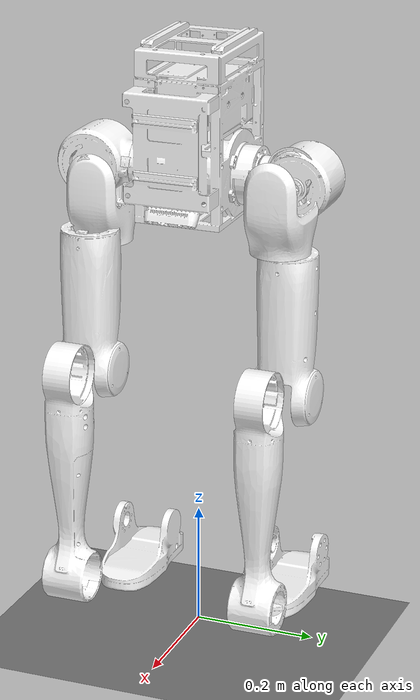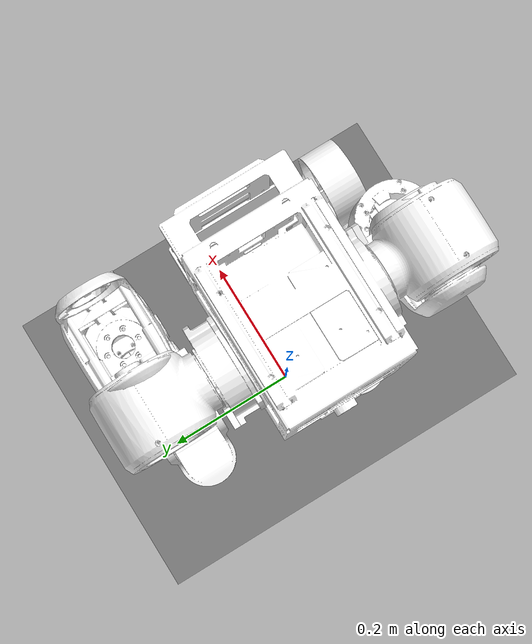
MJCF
<mujoco model="bipedal_robot">
  <option iterations="50" timestep="0.001" solver="PGS" gravity="0 0 -9.81" />

  <compiler angle="radian" meshdir="../meshes" eulerseq="zyx" autolimits="true" />

  <default>
    <joint limited="true" damping="0.01" armature="0.01" frictionloss="0.01" />
    <geom condim="4" contype="1" conaffinity="15" friction="0.9 0.2 0.2" solref="0.001 2" />
    <motor ctrllimited="true" />
    <equality solref="0.001 2" />
    <default class="visualgeom">
      <geom material="visualgeom" condim="1" contype="0" conaffinity="0" />
    </default>
  </default>

  <asset>
    <mesh name="base_Link" file="base_Link.STL" />
    <mesh name="abad_L_Link" file="abad_L_Link.STL" />
    <mesh name="hip_L_Link" file="hip_L_Link.STL" />
    <mesh name="yaw_L_Link" file="yaw_L_Link.STL" />
    <mesh name="knee_L_Link" file="knee_L_Link.STL" />
    <mesh name="foot_L_Link" file="foot_L_Link.STL" />
    <mesh name="abad_R_Link" file="abad_R_Link.STL" />
    <mesh name="hip_R_Link" file="hip_R_Link.STL" />
    <mesh name="yaw_R_Link" file="yaw_R_Link.STL" />
    <mesh name="foot_R_Link" file="foot_R_Link.STL" />
    <mesh name="knee_R_Link" file="knee_R_Link.STL" />
    <material name="visualgeom" rgba="0.5 0.9 0.2 1" />
    <texture name="texplane" type="2d" builtin="checker" rgb1="0.35 0.35 0.35" rgb2="0.55 0.55 0.55" width="512" height="512" mark="cross" markrgb=".8 .8 .8"/>
    <material name="matplane" reflectance="0.0" texture="texplane" texrepeat="1 1" texuniform="true"/>
  </asset>

  <worldbody>
    <light directional="true" diffuse="0.6 0.6 0.6" specular="0.2 0.2 0.2" pos="0 0 4" dir="0 0 -1" castshadow="false" />
    <geom name="ground" type="plane" pos="0 0 0" size="100 100 0.001" quat="1 0 0 0" material="matplane" condim="3" conaffinity="15" />
    <camera name="fixed" pos="0 -3.0 1.2263862818127802" xyaxes="1 0 0 0 0 1" />
    <camera name="track" mode="trackcom" pos="0 -3.0 1.2263862818127802" xyaxes="1 0 0 0 0 1" />
    <body name="root" pos="0 0 0.7263862818127802" quat="1 0 0 0">
      <freejoint name="root" />
      <site name="imu" size="0.01" pos="0 0 0" />
      <geom type="mesh" rgba="1 1 1 1" mesh="base_Link" contype="1" conaffinity="0" density="0" group="1" class="visualgeom" />
      <geom type="mesh" rgba="1 1 1 1" mesh="base_Link" />
      <body name="abad_L_Link" pos="0.00049 0.10649 0.0586">
        <inertial pos="0.00952 0.05904 0.00465" quat="0.539455 0.280113 0.443218 0.65885" mass="2.42561" diaginertia="0.00416632 0.0040781 0.00383557" />
        <joint name="abad_L_Joint" pos="0 0 0" axis="0 1 0" range="-2.67943 3.0627" actuatorfrcrange="-140 140" />
        <geom type="mesh" rgba="1 1 1 1" mesh="abad_L_Link" contype="1" conaffinity="0" density="0" group="1" class="visualgeom" />
        <geom type="mesh" rgba="1 1 1 1" mesh="abad_L_Link" />
        <body name="hip_L_Link" pos="0.04449 0.062 0.02216">
          <inertial pos="-0.01668 0.00027 -0.07375" quat="0.648806 0.26935 0.272543 0.657436" mass="0.50271" diaginertia="0.00205013 0.00130993 0.00124994" />
          <joint name="hip_L_Joint" pos="0 0 0" axis="0.895088 0 0.445889" range="-0.260578 2.11315" actuatorfrcrange="-140 140" />
          <geom type="mesh" rgba="1 1 1 1" mesh="hip_L_Link" contype="1" conaffinity="0" density="0" group="1" class="visualgeom" />
          <geom type="mesh" rgba="1 1 1 1" mesh="hip_L_Link" />
          <body name="yaw_L_Link" pos="0.00577 0 -0.12304">
            <inertial pos="0.07581 -0.00574 -0.15209" quat="0.658035 -0.173446 -0.15059 0.717097" mass="3.43624" diaginertia="0.0352754 0.0351752 0.00470938" />
            <joint name="yaw_L_Joint" pos="0 0 0" axis="-0.445889 0 0.895088" range="-2.70526 1.48353" actuatorfrcrange="-40 40" />
            <geom type="mesh" rgba="1 1 1 1" mesh="yaw_L_Link" contype="1" conaffinity="0" density="0" group="1" class="visualgeom" />
            <geom type="mesh" rgba="1 1 1 1" mesh="yaw_L_Link" />
            <body name="knee_L_Link" pos="0.10581 -0.04115 -0.2124">
              <inertial pos="-0.10112 0.03408 -0.20359" quat="0.972519 0.0505002 0.226981 0.0116543" mass="1.84166" diaginertia="0.0331647 0.0329788 0.00180649" />
              <joint name="knee_L_Joint" pos="0 0 0" axis="0 1 0" range="-3.54215 1.69384" actuatorfrcrange="-140 140" />
              <geom type="mesh" rgba="1 1 1 1" mesh="knee_L_Link" contype="1" conaffinity="0" density="0" group="1" class="visualgeom" />
              <geom type="mesh" rgba="1 1 1 1" mesh="knee_L_Link" />
              <body name="foot_L_Link" pos="-0.15601 0.07805 -0.31331">
                <inertial pos="0.01757 -0.03697 -0.04378" quat="0 0.73097 0 0.682409" mass="0.94793" diaginertia="0.00352032 0.00315 0.00132968" />
                <joint name="foot_L_Joint" pos="0 0 0" axis="0 1 0" range="-1.24826 2.23036" actuatorfrcrange="-40 40" />
                <geom type="mesh" rgba="1 1 1 1" mesh="foot_L_Link" contype="1" conaffinity="0" density="0" group="1" class="visualgeom" />
                <geom type="mesh" rgba="1 1 1 1" mesh="foot_L_Link" />
              </body>
            </body>
          </body>
        </body>
      </body>
      <body name="abad_R_Link" pos="-0.00049 -0.10631 0.0586">
        <inertial pos="-0.00959 -0.05904 -0.0048" quat="0.548257 0.288173 0.472665 0.626865" mass="2.42561" diaginertia="0.00416594 0.00407442 0.00382963" />
        <joint name="abad_R_Joint" pos="0 0 0" axis="0 1 0" range="-2.67943 3.0627" actuatorfrcrange="-140 140" />
        <geom type="mesh" rgba="1 1 1 1" mesh="abad_R_Link" contype="1" conaffinity="0" density="0" group="1" class="visualgeom" />
        <geom type="mesh" rgba="1 1 1 1" mesh="abad_R_Link" />
        <body name="hip_R_Link" pos="-0.04449 -0.062 -0.02216">
          <inertial pos="0.06892 -0.00027 -0.03111" quat="0.541762 0.454509 0.46171 0.535481" mass="0.50271" diaginertia="0.00205014 0.00131149 0.00124837" />
          <joint name="hip_R_Joint" pos="0 0 0" axis="0.895088 0 0.445889" range="-2.11315 0.260578" actuatorfrcrange="-140 140" />
          <geom type="mesh" rgba="1 1 1 1" mesh="hip_R_Link" contype="1" conaffinity="0" density="0" group="1" class="visualgeom" />
          <geom type="mesh" rgba="1 1 1 1" mesh="hip_R_Link" />
          <body name="yaw_R_Link" pos="0.09474 0 -0.07872">
            <inertial pos="0.07573 0.00574 -0.15213" quat="0.650731 -0.165607 -0.157516 0.724094" mass="3.43624" diaginertia="0.0352759 0.0351792 0.00470495" />
            <joint name="yaw_R_Joint" pos="0 0 0" axis="-0.445889 0 0.895088" range="-1.48353 2.70526" actuatorfrcrange="-40 40" />
            <geom type="mesh" rgba="1 1 1 1" mesh="yaw_R_Link" contype="1" conaffinity="0" density="0" group="1" class="visualgeom" />
            <geom type="mesh" rgba="1 1 1 1" mesh="yaw_R_Link" />
            <body name="knee_R_Link" pos="0.10581 0.04115 -0.2124">
              <inertial pos="-0.10112 -0.03408 -0.20359" quat="0.972519 -0.0505002 0.226981 -0.0116543" mass="1.84166" diaginertia="0.0331647 0.0329788 0.00180649" />
              <joint name="knee_R_Joint" pos="0 0 0" axis="0 1 0" range="-3.54215 1.69384" actuatorfrcrange="-140 140" />
              <geom type="mesh" rgba="1 1 1 1" mesh="knee_R_Link" contype="1" conaffinity="0" density="0" group="1" class="visualgeom" />
              <geom type="mesh" rgba="1 1 1 1" mesh="knee_R_Link" />
              <body name="foot_R_Link" pos="-0.15601 -0.00425 -0.31331">
                <inertial pos="0.01757 -0.03697 -0.04378" quat="0 0.73097 0 0.682409" mass="0.94793" diaginertia="0.00352032 0.00315 0.00132968" />
                <joint name="foot_R_Joint" pos="0 0 0" axis="0 1 0" range="-1.24826 2.23036" actuatorfrcrange="-40 40" />
                <geom type="mesh" rgba="1 1 1 1" mesh="foot_R_Link" contype="1" conaffinity="0" density="0" group="1" class="visualgeom" />
                <geom type="mesh" rgba="1 1 1 1" mesh="foot_R_Link" />
              </body>
            </body>
          </body>
        </body>
      </body>
    </body>
  </worldbody>

  <actuator>
    <motor name="abad_L_Joint" joint="abad_L_Joint" ctrllimited="true" ctrlrange="-140 140" gear="1" />
    <motor name="hip_L_Joint" joint="hip_L_Joint" ctrllimited="true" ctrlrange="-140 140" gear="1" />
    <motor name="yaw_L_Joint" joint="yaw_L_Joint" ctrllimited="true" ctrlrange="-40 40" gear="1" />
    <motor name="knee_L_Joint" joint="knee_L_Joint" ctrllimited="true" ctrlrange="-140 140" gear="1" />
    <motor name="foot_L_Joint" joint="foot_L_Joint" ctrllimited="true" ctrlrange="-40 40" gear="1" />
    <motor name="abad_R_Joint" joint="abad_R_Joint" ctrllimited="true" ctrlrange="-140 140" gear="1" />
    <motor name="hip_R_Joint" joint="hip_R_Joint" ctrllimited="true" ctrlrange="-140 140" gear="1" />
    <motor name="yaw_R_Joint" joint="yaw_R_Joint" ctrllimited="true" ctrlrange="-40 40" gear="1" />
    <motor name="knee_R_Joint" joint="knee_R_Joint" ctrllimited="true" ctrlrange="-140 140" gear="1" />
    <motor name="foot_R_Joint" joint="foot_R_Joint" ctrllimited="true" ctrlrange="-40 40" gear="1" />
  </actuator>

  <sensor>
    <actuatorpos name="abad_L_Joint_p" actuator="abad_L_Joint" />
    <actuatorvel name="abad_L_Joint_v" actuator="abad_L_Joint" />
    <actuatorfrc name="abad_L_Joint_f" actuator="abad_L_Joint" noise="0.001" />
    <actuatorpos name="hip_L_Joint_p" actuator="hip_L_Joint" />
    <actuatorvel name="hip_L_Joint_v" actuator="hip_L_Joint" />
    <actuatorfrc name="hip_L_Joint_f" actuator="hip_L_Joint" noise="0.001" />
    <actuatorpos name="yaw_L_Joint_p" actuator="yaw_L_Joint" />
    <actuatorvel name="yaw_L_Joint_v" actuator="yaw_L_Joint" />
    <actuatorfrc name="yaw_L_Joint_f" actuator="yaw_L_Joint" noise="0.001" />
    <actuatorpos name="knee_L_Joint_p" actuator="knee_L_Joint" />
    <actuatorvel name="knee_L_Joint_v" actuator="knee_L_Joint" />
    <actuatorfrc name="knee_L_Joint_f" actuator="knee_L_Joint" noise="0.001" />
    <actuatorpos name="foot_L_Joint_p" actuator="foot_L_Joint" />
    <actuatorvel name="foot_L_Joint_v" actuator="foot_L_Joint" />
    <actuatorfrc name="foot_L_Joint_f" actuator="foot_L_Joint" noise="0.001" />
    <actuatorpos name="abad_R_Joint_p" actuator="abad_R_Joint" />
    <actuatorvel name="abad_R_Joint_v" actuator="abad_R_Joint" />
    <actuatorfrc name="abad_R_Joint_f" actuator="abad_R_Joint" noise="0.001" />
    <actuatorpos name="hip_R_Joint_p" actuator="hip_R_Joint" />
    <actuatorvel name="hip_R_Joint_v" actuator="hip_R_Joint" />
    <actuatorfrc name="hip_R_Joint_f" actuator="hip_R_Joint" noise="0.001" />
    <actuatorpos name="yaw_R_Joint_p" actuator="yaw_R_Joint" />
    <actuatorvel name="yaw_R_Joint_v" actuator="yaw_R_Joint" />
    <actuatorfrc name="yaw_R_Joint_f" actuator="yaw_R_Joint" noise="0.001" />
    <actuatorpos name="knee_R_Joint_p" actuator="knee_R_Joint" />
    <actuatorvel name="knee_R_Joint_v" actuator="knee_R_Joint" />
    <actuatorfrc name="knee_R_Joint_f" actuator="knee_R_Joint" noise="0.001" />
    <actuatorpos name="foot_R_Joint_p" actuator="foot_R_Joint" />
    <actuatorvel name="foot_R_Joint_v" actuator="foot_R_Joint" />
    <actuatorfrc name="foot_R_Joint_f" actuator="foot_R_Joint" noise="0.001" />

    <framequat name="quat" objtype="site" noise="0.001" objname="imu" />
    <gyro name="gyro" site="imu" noise="0.005" cutoff="34.9" />
    <accelerometer name="acc" site="imu"/>
  </sensor>
</mujoco>
